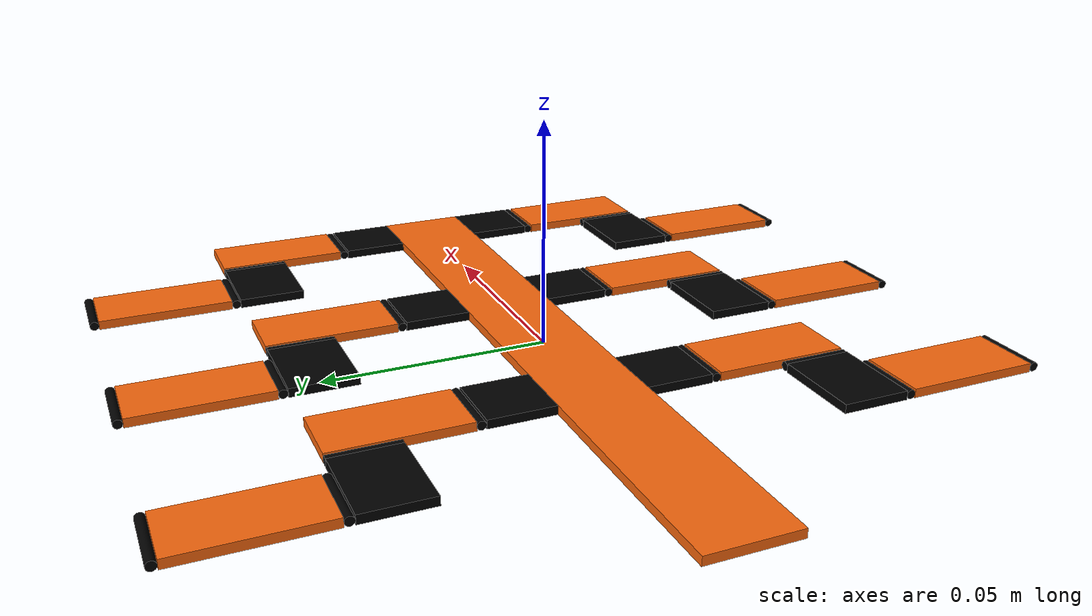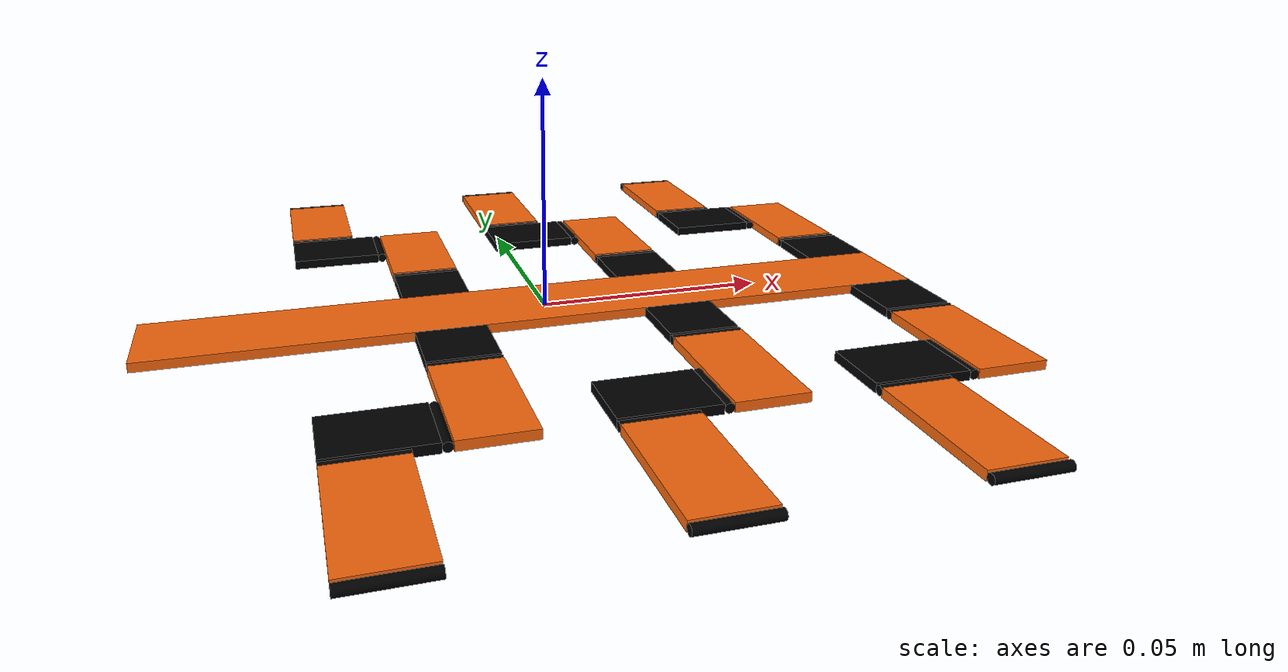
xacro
<?xml version="1.0"?>

<!-- Generate URDF: -->
<!-- rosrun xacro xacro millihex_description.xacro > millihex_description.urdf -->

<robot name="millihex" xmlns:xacro="http://www.ros.org/wiki/xacro">
    <!-- Gazebo Control Library -->
    <xacro:macro name="millihex_control" params="namespace">
        <gazebo>
            <plugin name="gazebo_ros_control" filename="libgazebo_ros_control.so">
                <robotNamespace>/${namespace}</robotNamespace>
            </plugin>
        </gazebo>
    </xacro:macro>

    <!-- PCB Properties -->
    <xacro:property name="pcb_density" value="2000" />       <!-- FR4 density (kg/m^3) -->
    <xacro:property name="pcb_thickness_z" value="0.002" />  <!-- PCB thickness (m) -->

    <!-- Thorax Properties -->
    <xacro:property name="thorax_x" value="0.17" />     <!-- x length (m) -->
    <xacro:property name="thorax_y" value="0.02" />     <!-- y length (m) -->
    <xacro:property name="thorax_mass"
        value="${pcb_density * (thorax_x * thorax_y * pcb_thickness_z)}" />  <!-- (kg) -->

    <!-- Coxa Properties -->
    <xacro:property name="coxa_x" value="0.015" />     <!-- x length (m) -->
    <xacro:property name="coxa_y" value="0.015" />     <!-- y length (m) -->
    <xacro:property name="coxa_mass"
        value="${pcb_density * (coxa_x * coxa_y * pcb_thickness_z)}" />  <!-- (kg) -->

    <!-- Femur (Leg Link 1) Properties -->
    <xacro:property name="leg_link1_x" value="0.015" />     <!-- x length (m) -->
    <xacro:property name="leg_link1_y" value="0.03" />     <!-- y length (m) -->
    <xacro:property name="leg_link1_mass"
        value="${pcb_density * (leg_link1_x * leg_link1_y * pcb_thickness_z)}" />  <!-- (kg) -->

    <!-- Tibia (Leg Link 2) Properties -->
    <xacro:property name="leg_link2_x" value="0.02" />     <!-- x length (m) -->
    <xacro:property name="leg_link2_y" value="0.015" />     <!-- y length (m) -->
    <xacro:property name="leg_link2_mass"
        value="${pcb_density * (leg_link2_x * leg_link2_y * pcb_thickness_z)}" />  <!-- (kg) -->

    <!-- Tarsus (Leg Link 3) Properties -->
    <xacro:property name="leg_link3_x" value="0.015" />     <!-- x length (m) -->
    <xacro:property name="leg_link3_y" value="0.03" />     <!-- y length (m) -->
    <xacro:property name="leg_link3_mass"
        value="${pcb_density * (leg_link3_x * leg_link3_y * pcb_thickness_z)}" />  <!-- (kg) -->

    <!-- Joint Link Properties -->
    <xacro:property name="joint_link_r" value="${pcb_thickness_z / 2}" />  <!-- radius (m) -->
    <xacro:property name="joint_link_l" value="${coxa_x}" />               <!-- length (m) -->
    <xacro:property name="joint_link_mass"
        value="${pcb_density * (pi * (joint_link_r * joint_link_r) * joint_link_l)}" />  <!-- (kg) -->

    <!-- Link Friction and -->
    <xacro:property name="link_kp" value="100000.0" />  <!-- Contact stiffness -->
    <xacro:property name="link_kd" value="1.0" />        <!-- Contact damping -->
    <xacro:property name="link_mu1" value="100.0" />     <!-- Friction coefficient 1 -->
    <xacro:property name="link_mu2" value="100.0" />     <!-- Friction coefficient 2 -->

    <!-- Revolute Joint Properties -->
    <xacro:property name="joint_upper_limit" value="${pi / 2}" />   <!-- (rad) -->
    <xacro:property name="joint_lower_limit" value="${-pi / 2}" />  <!-- (rad) -->
    <xacro:property name="joint_effort_limit" value="1.0" />
    <xacro:property name="joint_velocity_limit" value="1.0" />      <!-- (rad/s) -->
    <xacro:property name="joint_damping" value="0.0" />        <!-- (N*m*s/rad) -->
    <xacro:property name="joint_friction" value="0.0" />

    <!-- Thorax Leg Joint Attachment Positions -->
    <xacro:property name="leg_spacing" value="${(2 * coxa_x) + leg_link2_x}" />
    <xacro:property name="frontal_leg_x" value="${(thorax_x / 2) - (coxa_x / 2)}" />
    <xacro:property name="medial_leg_x" value="${frontal_leg_x - leg_spacing}" />
    <xacro:property name="hind_leg_x" value="${medial_leg_x - leg_spacing}" />

    <!-- Color Definitions -->
    <material name="Black">
        <color rgba="0.0 0.0 0.0 1.0" />
    </material>
    <material name="Orange">
        <color rgba="0.98 0.41 0.055 1.0" />
    </material>
    <material name="White">
        <color rgba="0.0 0.0 0.0 0.0" />
    </material>

    <!-- Calculate Inertia Tensor of a Box -->
    <xacro:macro name="box_inertia" params="mass x y z">
        <inertia ixx="${(1 / 12) * mass * ((y * y) + (z * z))}" ixy = "0" ixz = "0"
                 iyy="${(1 / 12) * mass * ((x * x) + (z * z))}" iyz = "0"
                 izz="${(1 / 12) * mass * ((x * x) + (y * y))}" />
    </xacro:macro>

    <!-- Calculate Inertia Tensor of a Cylinder -->
    <xacro:macro name="cylinder_inerta" params="mass r l">
        <inertia ixx="${(1 / 12) * mass * (3 * (r * r) + (l * l))}" ixy = "0" ixz = "0"
                 iyy="${(1 / 12) * mass * (3 * (r * r) + (l * l))}" iyz = "0"
                 izz="${(1 / 2) * mass * (r * r)}" />
    </xacro:macro>

    <!-- Thorax Definition -->
    <xacro:macro name="millihex_thorax" params="color">
        <!-- Dummy Base Link to support KDL -->
        <link name="base_link" />

        <!-- Thorax Geometry -->
        <link name="thorax">
            <inertial>
                <origin xyz="0 0 0" rpy="0 0 0" />
                <mass value="${thorax_mass}" />
                <xacro:box_inertia mass="${thorax_mass}" x="${thorax_x}"
                    y="${thorax_y}" z="${pcb_thickness_z}" />
            </inertial>
            <collision>
                <origin xyz="0 0 0" rpy="0 0 0" />
                <geometry>
                    <box size="${thorax_x} ${thorax_y} ${pcb_thickness_z}" />
                </geometry>
            </collision>
            <visual>
                <origin xyz="0 0 0" rpy="0 0 0" />
                <geometry>
                    <box size="${thorax_x} ${thorax_y} ${pcb_thickness_z}" />
                </geometry>
                <material name="${color}" />
            </visual>
        </link>

        <!-- Gazebo properties -->
        <gazebo reference="thorax">
            <kp>${link_kp}</kp>
            <kd>${link_kd}</kd>
            <mu1>${link_mu1}</mu1>
            <mu2>${link_mu2}</mu2>
            <material>Gazebo/${color}</material>
        </gazebo>

        <!-- Join Base Link and Thorax -->
        <joint name="base_joint" type="fixed">
            <parent link="base_link" />
            <child link="thorax" />
        </joint>
    </xacro:macro>

    <!-- Coxa Definition -->
    <xacro:macro name="millihex_coxa" params="leg_number color">
        <!-- Coxa Geometry -->
        <link name="leg${leg_number}_coxa">
            <inertial>
                <origin xyz="0 0 0" rpy="0 0 0" />
                <mass value="${coxa_mass}" />
                <xacro:box_inertia mass="${coxa_mass}" x="${coxa_x}"
                    y="${coxa_y}" z="${pcb_thickness_z}" />
            </inertial>
            <collision>
                <origin xyz="0 ${coxa_y / 2} 0" rpy="0 0 0" />
                <geometry>
                    <box size="${coxa_x} ${coxa_y} ${pcb_thickness_z}" />
                </geometry>
            </collision>
            <visual>
                <origin xyz="0 ${coxa_y / 2} 0" rpy="0 0 0" />
                <geometry>
                    <box size="${coxa_x} ${coxa_y} ${pcb_thickness_z}" />
                </geometry>
                <material name="${color}"/>
            </visual>
        </link>

        <!-- Gazebo properties -->
        <gazebo reference="leg${leg_number}_coxa">
            <kp>${link_kp}</kp>
            <kd>${link_kd}</kd>
            <mu1>${link_mu1}</mu1>
            <mu2>${link_mu2}</mu2>
            <material>Gazebo/${color}</material>
        </gazebo>
    </xacro:macro>

    <!-- Femur (Leg Link 1) Definition -->
    <xacro:macro name="millihex_leg_link1" params="leg_number color">
        <!-- Femur (Leg Link 1) Geometry -->
        <link name="leg${leg_number}_link1">
            <inertial>
                <origin xyz="0 0 0" rpy="0 0 0" />
                <mass value="${leg_link1_mass}" />
                <xacro:box_inertia mass="${leg_link1_mass}" x="${leg_link1_x}"
                    y="${leg_link1_y}" z="${pcb_thickness_z}" />
            </inertial>
            <collision>
                <origin xyz="0 ${(leg_link1_y / 2) + joint_link_r} 0" rpy="0 0 0" />
                <geometry>
                    <box size="${leg_link1_x} ${leg_link1_y} ${pcb_thickness_z}" />
                </geometry>
            </collision>
            <visual>
                <origin xyz="0 ${(leg_link1_y / 2) + joint_link_r} 0" rpy="0 0 0" />
                <geometry>
                    <box size="${leg_link1_x} ${leg_link1_y} ${pcb_thickness_z}" />
                </geometry>
                <material name="${color}"/>
            </visual>
        </link>

        <!-- Gazebo properties -->
        <gazebo reference="leg${leg_number}_link1">
            <kp>${link_kp}</kp>
            <kd>${link_kd}</kd>
            <mu1>${link_mu1}</mu1>
            <mu2>${link_mu2}</mu2>
            <material>Gazebo/${color}</material>
        </gazebo>
    </xacro:macro>

    <!-- Tibia (Leg Link 2) Definition -->
    <xacro:macro name="millihex_leg_link2" params="leg_number color">
        <!-- Tibia (Leg Link 2) Geometry -->
        <link name="leg${leg_number}_link2">
            <inertial>
                <origin xyz="0 0 0" rpy="0 0 0" />
                <mass value="${leg_link2_mass}" />
                <xacro:box_inertia mass="${leg_link2_mass}" x="${leg_link2_x}"
                    y="${leg_link2_y}" z="${pcb_thickness_z}" />
            </inertial>
            <collision>
                <origin xyz="${-((leg_link2_x / 2) + joint_link_r)} 0 0" rpy="0 0 0" />
                <geometry>
                    <box size="${leg_link2_x} ${leg_link2_y} ${pcb_thickness_z}" />
                </geometry>
            </collision>
            <visual>
                <origin xyz="${-((leg_link2_x / 2) + joint_link_r)} 0 0" rpy="0 0 0" />
                <geometry>
                    <box size="${leg_link2_x} ${leg_link2_y} ${pcb_thickness_z}" />
                </geometry>
                <material name="${color}"/>
            </visual>
        </link>

        <!-- Gazebo properties -->
        <gazebo reference="leg${leg_number}_link2">
            <kp>${link_kp}</kp>
            <kd>${link_kd}</kd>
            <mu1>${link_mu1}</mu1>
            <mu2>${link_mu2}</mu2>
            <material>Gazebo/${color}</material>
        </gazebo>
    </xacro:macro>

    <!-- Tarsus (Leg Link 3) Definition -->
    <xacro:macro name="millihex_leg_link3" params="leg_number color">
        <!-- Tarsus (Leg Link 3) Geometry -->
        <link name="leg${leg_number}_link3">
            <inertial>
                <origin xyz="0 0 0" rpy="0 0 0" />
                <mass value="${leg_link3_mass}" />
                <xacro:box_inertia mass="${leg_link3_mass}" x="${leg_link3_x}"
                    y="${leg_link3_y}" z="${pcb_thickness_z}" />
            </inertial>
            <collision>
                <origin xyz="0 ${(leg_link3_y / 2) + joint_link_r} 0" rpy="0 0 0" />
                <geometry>
                    <box size="${leg_link3_x} ${leg_link3_y} ${pcb_thickness_z}" />
                </geometry>
            </collision>
            <visual>
                <origin xyz="0 ${(leg_link3_y / 2) + joint_link_r} 0" rpy="0 0 0" />
                <geometry>
                    <box size="${leg_link3_x} ${leg_link3_y} ${pcb_thickness_z}" />
                </geometry>
                <material name="${color}"/>
            </visual>
        </link>

        <!-- Gazebo properties -->
        <gazebo reference="leg${leg_number}_link3">
            <kp>${link_kp}</kp>
            <kd>${link_kd}</kd>
            <mu1>${link_mu1}</mu1>
            <mu2>${link_mu2}</mu2>
            <material>Gazebo/${color}</material>
        </gazebo>
    </xacro:macro>

    <!-- Joint Link Definition -->
    <xacro:macro name="millihex_joint_link"
        params="leg_number link_number yaw color">
        <!-- Joint Link Geometry -->
        <link name="leg${leg_number}_joint_link${link_number}">
            <inertial>
                <origin xyz="0 0 0" rpy="0 0 0" />
                <mass value="${joint_link_mass}" />
                <xacro:cylinder_inerta mass="${joint_link_mass}"
                    r="${joint_link_r}" l="${joint_link_l}" />
            </inertial>
            <collision>
                <origin xyz="0 0 0" rpy="0 ${pi / 2} ${yaw}" />
                <geometry>
                    <cylinder radius="${joint_link_r}" length="${joint_link_l}" />
                </geometry>
            </collision>
            <visual>
                <origin xyz="0 0 0" rpy="0 ${pi / 2} ${yaw}" />
                <geometry>
                    <cylinder radius="${joint_link_r}" length="${joint_link_l}" />
                </geometry>
                <material name="${color}"/>
            </visual>
        </link>

        <!-- Gazebo properties -->
        <gazebo reference="leg${leg_number}_joint_link${link_number}">
            <kp>${link_kp}</kp>
            <kd>${link_kd}</kd>
            <mu1>${link_mu1}</mu1>
            <mu2>${link_mu2}</mu2>
            <material>Gazebo/${color}</material>
        </gazebo>
    </xacro:macro>

    <!-- Joint Transmission -->
    <xacro:macro name="leg_transmission" params="leg_number joint_number">
        <transmission name="leg${leg_number}_joint${joint_number}_tran">
            <type>transmission_interface/SimpleTransmission</type>
            <joint name="leg${leg_number}_joint${joint_number}">
                <hardwareInterface>
                    hardware_interface/EffortJointInterface
                </hardwareInterface>
            </joint>
            <actuator name="leg${leg_number}_joint${joint_number}_motor">
                <hardwareInterface>
                    hardware_interface/EffortJointInterface
                </hardwareInterface>
                <mechanicalReduction>1</mechanicalReduction>
            </actuator>
        </transmission>
    </xacro:macro>

    <!-- Assemble Leg -->
    <xacro:macro name="millihex_leg" params="leg_number">
        <!-- Coxa -->
        <xacro:millihex_coxa leg_number="${leg_number}" color="Black" />

        <!-- Joint Link 1 -->
        <xacro:millihex_joint_link leg_number="${leg_number}" link_number="1"
            yaw="0.0" color="White" />

        <!-- Joint 1 -->
        <joint name="leg${leg_number}_joint1" type="revolute">
            <parent link="leg${leg_number}_coxa" />
            <child link="leg${leg_number}_joint_link1" />
            <origin xyz="0 ${coxa_y + joint_link_r} 0" rpy="0 0 0" />
            <dynamics damping="${joint_damping}" friction="${joint_friction}"/>
            <limit lower="${joint_lower_limit}"
                   upper="${joint_upper_limit}"
                   effort="${joint_effort_limit}"
                   velocity="${joint_velocity_limit}" />
            <axis xyz="1 0 0" />
        </joint>
        <xacro:leg_transmission leg_number="${leg_number}" joint_number="1" />

        <!-- Femur (Leg Link 1) -->
        <xacro:millihex_leg_link1 leg_number="${leg_number}" color="Orange" />

        <!-- Fixed Joint 1 -->
        <joint name="leg${leg_number}_fixed_joint1" type="fixed">
            <parent link="leg${leg_number}_joint_link1" />
            <child link="leg${leg_number}_link1" />
            <origin xyz="0 0 0" rpy="0 0 0" />
        </joint>

        <!-- Joint Link 2 -->
        <xacro:millihex_joint_link leg_number="${leg_number}" link_number="2"
            yaw="${pi / 2}" color="White" />

        <!-- Joint 2 -->
        <joint name="leg${leg_number}_joint2" type="revolute">
            <parent link="leg${leg_number}_link1" />
            <child link="leg${leg_number}_joint_link2" />
            <origin xyz="${-((leg_link1_x / 2) + joint_link_r)}
                ${(leg_link1_y) - (joint_link_l / 2) + joint_link_r} 0"
                rpy="0 0 0" />
            <dynamics damping="${joint_damping}" friction="${joint_friction}"/>
            <limit lower="${joint_lower_limit}"
                   upper="${joint_upper_limit}"
                   effort="${joint_effort_limit}"
                   velocity="${joint_velocity_limit}" />
            <axis xyz="0 1 0" />
        </joint>
        <xacro:leg_transmission leg_number="${leg_number}" joint_number="2" />

        <!-- Tibia (Leg Link 2) -->
        <xacro:millihex_leg_link2 leg_number="${leg_number}" color="Black" />

        <!-- Fixed Joint 2 -->
        <joint name="leg${leg_number}_fixed_joint2" type="fixed">
            <parent link="leg${leg_number}_joint_link2" />
            <child link="leg${leg_number}_link2" />
            <origin xyz="0 0 0" rpy="0 0 0" />
        </joint>

        <!-- Joint Link 3 -->
        <xacro:millihex_joint_link leg_number="${leg_number}" link_number="3"
            yaw="0.0" color="White" />

        <!-- Joint 3 -->
        <joint name="leg${leg_number}_joint3" type="revolute">
            <parent link="leg${leg_number}_link2" />
            <child link="leg${leg_number}_joint_link3" />
            <origin xyz="${-(leg_link2_x) + (joint_link_l / 2) - joint_link_r}
                ${(leg_link2_y / 2) + joint_link_r} 0" rpy="0 0 0" />
            <dynamics damping="${joint_damping}" friction="${joint_friction}"/>
            <limit lower="${joint_lower_limit}"
                   upper="${joint_upper_limit}"
                   effort="${joint_effort_limit}"
                   velocity="${joint_velocity_limit}" />
            <axis xyz="1 0 0" />
        </joint>
        <xacro:leg_transmission leg_number="${leg_number}" joint_number="3" />

        <!-- Tarsus (Leg Link 3) -->
        <xacro:millihex_leg_link3 leg_number="${leg_number}" color="Orange" />

        <!-- Fixed Joint 3 -->
        <joint name="leg${leg_number}_fixed_joint3" type="fixed">
            <parent link="leg${leg_number}_joint_link3" />
            <child link="leg${leg_number}_link3" />
            <origin xyz="0 0 0" rpy="0 0 0" />
        </joint>

        <!-- Joint Link 4 (Foot) -->
        <xacro:millihex_joint_link leg_number="${leg_number}" link_number="4"
            yaw="0.0" color="White" />

        <!-- Fixed Joint 4 (Foot Joint) -->
        <joint name="leg${leg_number}_fixed_joint4" type="fixed">
            <parent link="leg${leg_number}_link3" />
            <child link="leg${leg_number}_joint_link4" />
            <origin xyz="0 ${leg_link3_y + (2 * joint_link_r)} 0" rpy="0 0 0" />
        </joint>
    </xacro:macro>

    <!-- Assemble Body -->
    <xacro:macro name="millihex_body" params="">
        <!-- Thorax -->
        <xacro:millihex_thorax color="Orange" />

        <!-- Leg 1 -->
        <xacro:millihex_leg leg_number="1" />
        <joint name="leg1_coxa_joint" type="fixed">
            <parent link="thorax" />
            <child link="leg1_coxa" />
            <origin xyz="${frontal_leg_x} ${thorax_y / 2} 0" rpy="0 0 0" />
        </joint>

        <!-- Leg 2 -->
        <xacro:millihex_leg leg_number="2" />
        <joint name="leg2_coxa_joint" type="fixed">
            <parent link="thorax" />
            <child link="leg2_coxa" />
            <origin xyz="${medial_leg_x} ${thorax_y / 2} 0" rpy="0 0 0" />
        </joint>

        <!-- Leg 3 -->
        <xacro:millihex_leg leg_number="3" />
        <joint name="leg3_coxa_joint" type="fixed">
            <parent link="thorax" />
            <child link="leg3_coxa" />
            <origin xyz="${hind_leg_x} ${thorax_y / 2} 0" rpy="0 0 0" />
        </joint>

        <!-- Leg 4 -->
        <xacro:millihex_leg leg_number="4" />
        <joint name="leg4_coxa_joint" type="fixed">
            <parent link="thorax" />
            <child link="leg4_coxa" />
            <origin xyz="${frontal_leg_x} ${-thorax_y / 2} 0" rpy="${pi} 0 0" />
        </joint>

        <!-- Leg 5 -->
        <xacro:millihex_leg leg_number="5" />
        <joint name="leg5_coxa_joint" type="fixed">
            <parent link="thorax" />
            <child link="leg5_coxa" />
            <origin xyz="${medial_leg_x} ${-thorax_y / 2} 0" rpy="${pi} 0 0" />
        </joint>

        <!-- Leg 6 -->
        <xacro:millihex_leg leg_number="6" />
        <joint name="leg6_coxa_joint" type="fixed">
            <parent link="thorax" />
            <child link="leg6_coxa" />
            <origin xyz="${hind_leg_x} ${-thorax_y / 2} 0" rpy="${pi} 0 0" />
        </joint>
    </xacro:macro>

    <!-- Assemble Robot -->
    <xacro:millihex_body />
    <xacro:millihex_control namespace="millihex" />

</robot>
